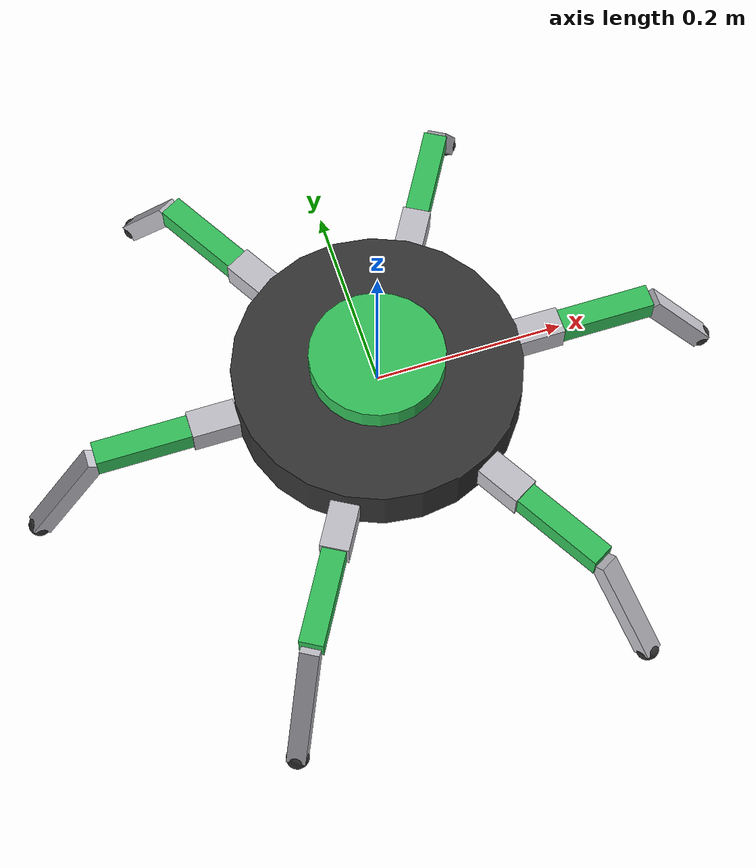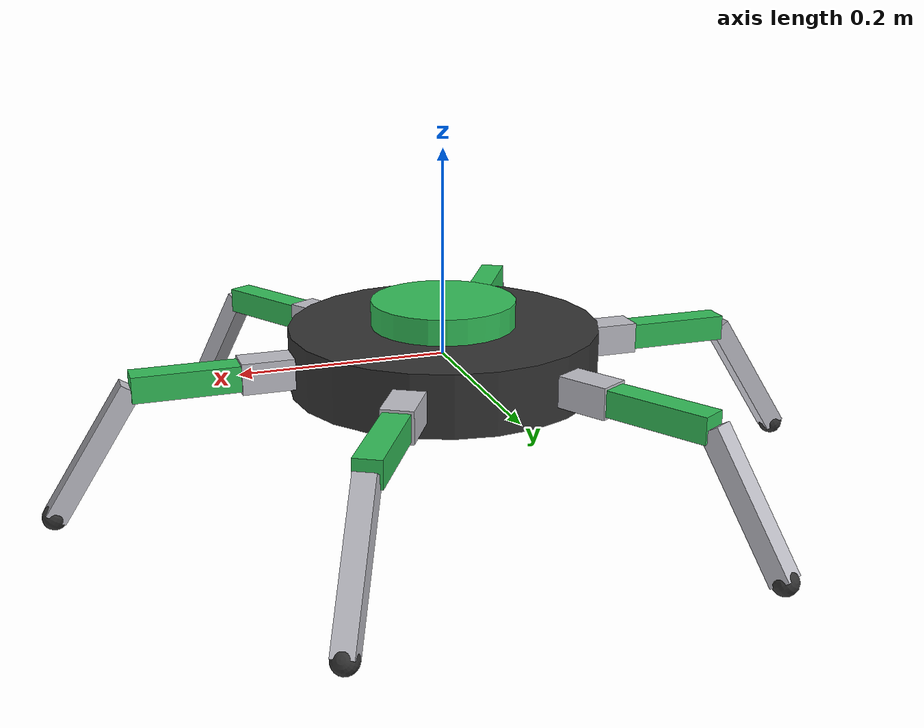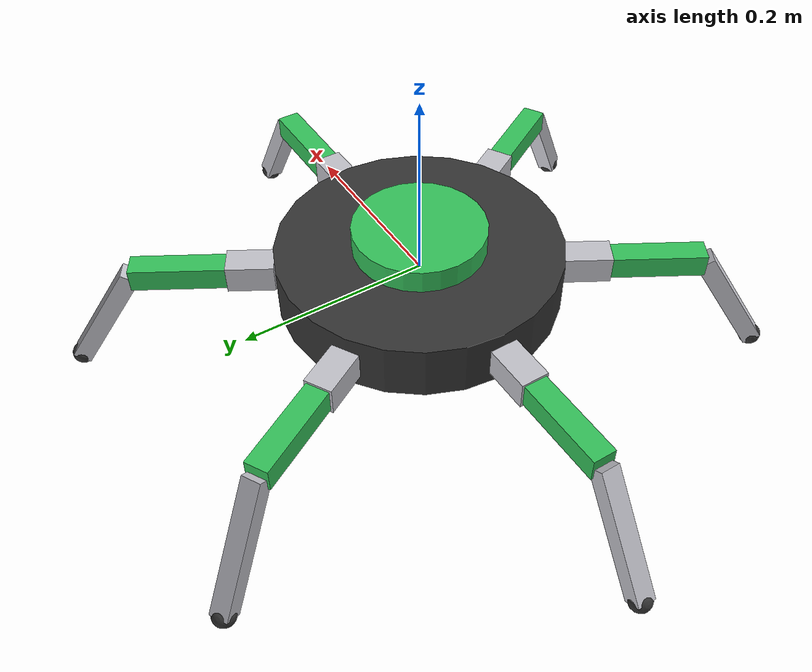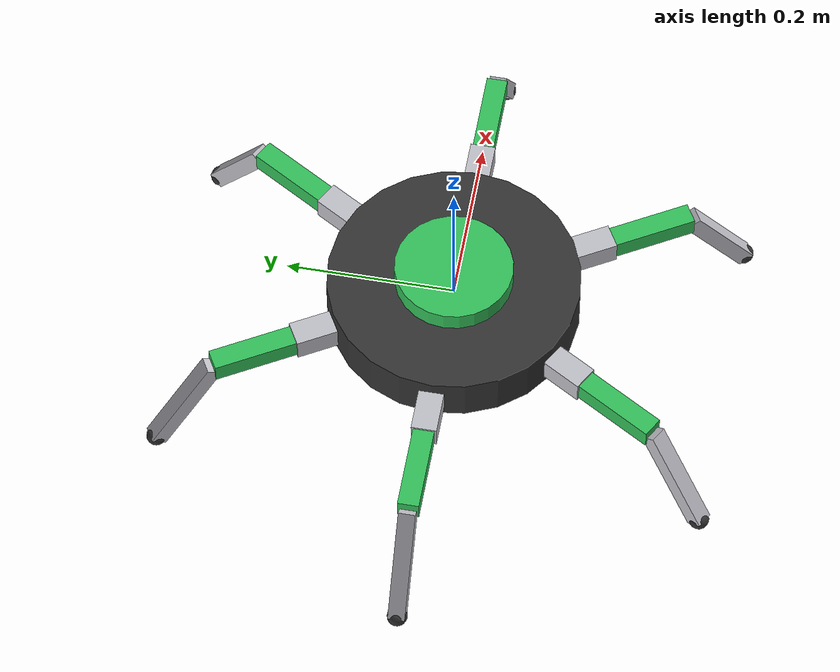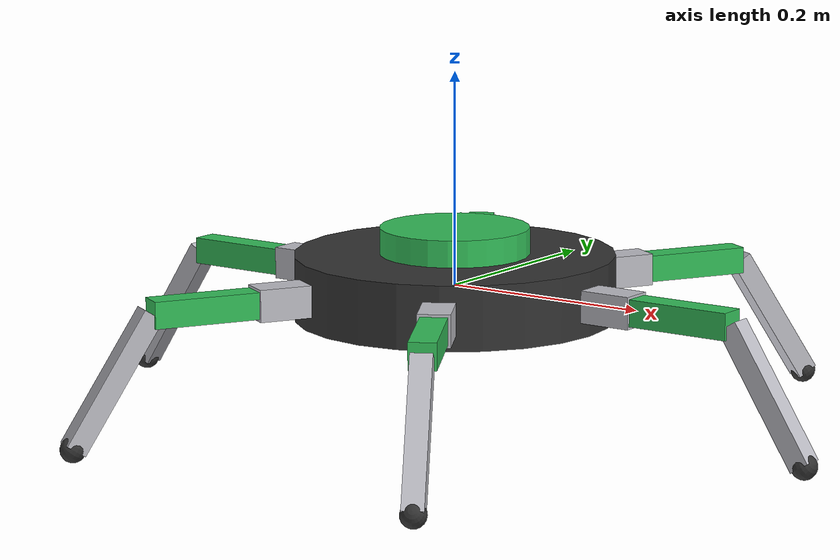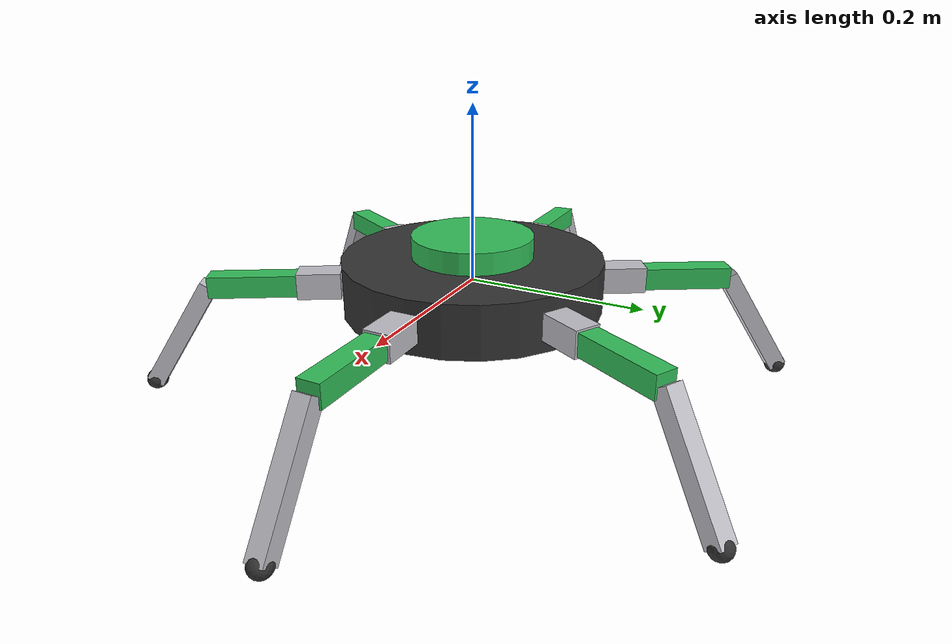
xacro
<?xml version="1.0"?>
<!-- A 6-legged spider robot: 18 revolute joints (coxa, femur, tibia per leg). Each leg's joint origin is turned by its yaw angle. -->
<robot name="hexapod" xmlns:xacro="http://www.ros.org/wiki/xacro">
  <xacro:include filename="../../common/urdf/macros.xacro"/>
  <xacro:property name="body_r" value="0.15"/>
  <link name="base_link">
    <visual><geometry><cylinder radius="${body_r}" length="0.06"/></geometry><material name="dark_grey"/></visual>
    <visual><origin xyz="0 0 0.04"/><geometry><cylinder radius="0.07" length="0.03"/></geometry><material name="green"/></visual>
    <collision><geometry><cylinder radius="${body_r}" length="0.06"/></geometry></collision>
    <xacro:cylinder_inertia m="2.0" r="${body_r}" h="0.06"/>
  </link>
  <xacro:macro name="hex_leg" params="n yaw_deg">
    <xacro:property name="yaw" value="${radians(yaw_deg)}"/>
    <joint name="leg${n}_coxa_joint" type="revolute">
      <parent link="base_link"/><child link="leg${n}_coxa_link"/>
      <origin xyz="${body_r*cos(yaw)} ${body_r*sin(yaw)} 0" rpy="0 0 ${yaw}"/><axis xyz="0 0 1"/>
      <limit lower="-0.8" upper="0.8" effort="5" velocity="5"/>
    </joint>
    <link name="leg${n}_coxa_link">
      <visual><origin xyz="0.025 0 0"/><geometry><box size="0.05 0.03 0.03"/></geometry><material name="light_grey"/></visual>
      <collision><origin xyz="0.025 0 0"/><geometry><box size="0.05 0.03 0.03"/></geometry></collision>
      <xacro:box_inertia m="0.05" x="0.05" y="0.03" z="0.03" xyz="0.025 0 0"/>
    </link>
    <joint name="leg${n}_femur_joint" type="revolute">
      <parent link="leg${n}_coxa_link"/><child link="leg${n}_femur_link"/>
      <origin xyz="0.05 0 0"/><axis xyz="0 1 0"/><limit lower="-1.2" upper="1.2" effort="5" velocity="5"/>
    </joint>
    <link name="leg${n}_femur_link">
      <visual><origin xyz="0.05 0 0"/><geometry><box size="0.10 0.025 0.025"/></geometry><material name="green"/></visual>
      <collision><origin xyz="0.05 0 0"/><geometry><box size="0.10 0.025 0.025"/></geometry></collision>
      <xacro:box_inertia m="0.08" x="0.10" y="0.025" z="0.025" xyz="0.05 0 0"/>
    </link>
    <joint name="leg${n}_tibia_joint" type="revolute">
      <parent link="leg${n}_femur_link"/><child link="leg${n}_tibia_link"/>
      <origin xyz="0.10 0 0" rpy="0 1.0 0"/><axis xyz="0 1 0"/><limit lower="-1.0" upper="1.0" effort="5" velocity="5"/>
    </joint>
    <link name="leg${n}_tibia_link">
      <visual><origin xyz="0.07 0 0"/><geometry><box size="0.14 0.02 0.02"/></geometry><material name="light_grey"/></visual>
      <collision><origin xyz="0.07 0 0"/><geometry><box size="0.14 0.02 0.02"/></geometry></collision>
      <xacro:box_inertia m="0.06" x="0.14" y="0.02" z="0.02" xyz="0.07 0 0"/>
    </link>
    <joint name="leg${n}_foot_joint" type="fixed">
      <parent link="leg${n}_tibia_link"/><child link="leg${n}_foot_link"/><origin xyz="0.14 0 0"/>
    </joint>
    <link name="leg${n}_foot_link">
      <visual><geometry><sphere radius="0.012"/></geometry><material name="dark_grey"/></visual>
      <collision><geometry><sphere radius="0.012"/></geometry></collision>
    </link>
  </xacro:macro>
  <xacro:hex_leg n="1" yaw_deg="0"/>
  <xacro:hex_leg n="2" yaw_deg="60"/>
  <xacro:hex_leg n="3" yaw_deg="120"/>
  <xacro:hex_leg n="4" yaw_deg="180"/>
  <xacro:hex_leg n="5" yaw_deg="240"/>
  <xacro:hex_leg n="6" yaw_deg="300"/>
</robot>

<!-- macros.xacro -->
<!-- Shared materials and inertia macros (solid box, cylinder along Z, sphere) -->
<robot xmlns:xacro="http://www.ros.org/wiki/xacro">
  <material name="orange"><color rgba="1.0 0.55 0.0 1.0"/></material>
  <material name="dark_grey"><color rgba="0.2 0.2 0.2 1.0"/></material>
  <material name="light_grey"><color rgba="0.75 0.75 0.78 1.0"/></material>
  <material name="sky_blue"><color rgba="0.3 0.7 1.0 1.0"/></material>
  <material name="green"><color rgba="0.2 0.75 0.35 1.0"/></material>
  <material name="red"><color rgba="0.9 0.2 0.2 1.0"/></material>
  <material name="white"><color rgba="0.95 0.95 0.95 1.0"/></material>
  <material name="prop_blue"><color rgba="0.3 0.6 1.0 0.6"/></material>

  <xacro:macro name="box_inertia" params="m x y z xyz:='0 0 0' rpy:='0 0 0'">
    <inertial>
      <origin xyz="${xyz}" rpy="${rpy}"/>
      <mass value="${m}"/>
      <inertia ixx="${m*(y*y+z*z)/12}" ixy="0" ixz="0" iyy="${m*(x*x+z*z)/12}" iyz="0" izz="${m*(x*x+y*y)/12}"/>
    </inertial>
  </xacro:macro>
  <xacro:macro name="cylinder_inertia" params="m r h xyz:='0 0 0' rpy:='0 0 0'">
    <inertial>
      <origin xyz="${xyz}" rpy="${rpy}"/>
      <mass value="${m}"/>
      <inertia ixx="${m*(3*r*r+h*h)/12}" ixy="0" ixz="0" iyy="${m*(3*r*r+h*h)/12}" iyz="0" izz="${m*r*r/2}"/>
    </inertial>
  </xacro:macro>
  <xacro:macro name="sphere_inertia" params="m r xyz:='0 0 0'">
    <inertial>
      <origin xyz="${xyz}"/>
      <mass value="${m}"/>
      <inertia ixx="${2*m*r*r/5}" ixy="0" ixz="0" iyy="${2*m*r*r/5}" iyz="0" izz="${2*m*r*r/5}"/>
    </inertial>
  </xacro:macro>
</robot>
